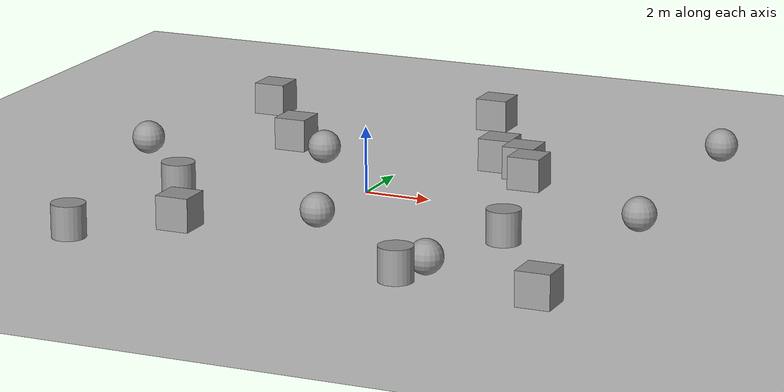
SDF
<sdf version="1.6">
 <world name="default">
  <light name="sun" type="directional">
   <pose>0 0 10 0 -0 0</pose>
   <diffuse>0.8 0.8 0.8 1</diffuse>
   <specular>0.2 0.2 0.2 1</specular>
   <attenuation>
    <range>1000</range>
    <constant>0.9</constant>
    <linear>0.01</linear>
    <quadratic>0.001</quadratic>
   </attenuation>
   <direction>-0.5 0.1 -0.9</direction>
  </light>
  <model name="ground_plane">
   <static>1</static>
   <link name="link">
    <collision name="collision">
     <geometry><plane><normal>0 0 1</normal><size>100 100</size></plane></geometry>
     <surface>
      <contact><collide_bitmask>65535</collide_bitmask></contact>
      <friction><ode><mu>100</mu><mu2>50</mu2></ode></friction>
     </surface>
    </collision>
    <visual name="visual">
     <cast_shadows>0</cast_shadows>
     <geometry><plane><normal>0 0 1</normal><size>100 100</size></plane></geometry>
     <material>
      <script><uri>file://media/materials/scripts/gazebo.material</uri><name>Gazebo/Grey</name></script>
     </material>
    </visual>
   </link>
  </model>
  <gravity>0 0 -9.8</gravity>
  <magnetic_field>6e-06 2.3e-05 -4.2e-05</magnetic_field>
  <atmosphere type="adiabatic"/>
  <physics name="default_physics" default="0" type="ode">
   <max_step_size>0.001</max_step_size>
   <real_time_factor>1</real_time_factor>
   <real_time_update_rate>1000</real_time_update_rate>
  </physics>
  <scene><ambient>0.4 0.4 0.4 1</ambient><background>0.7 0.7 0.7 1</background><shadows>1</shadows></scene>
  <audio><device>default</device></audio>
  <spherical_coordinates>
   <surface_model>EARTH_WGS84</surface_model>
   <latitude_deg>0</latitude_deg>
   <longitude_deg>0</longitude_deg>
   <elevation>0</elevation>
   <heading_deg>0</heading_deg>
  </spherical_coordinates>
  <model name="unit_box">
   <pose>-3.40491 -5.3164 0.5 -0 -0 -0</pose>
   <link name="link">
    <inertial>
     <mass>1</mass>
     <inertia>
      <ixx>0.166667</ixx>
      <ixy>0</ixy>
      <ixz>0</ixz>
      <iyy>0.166667</iyy>
      <iyz>0</iyz>
      <izz>0.166667</izz>
     </inertia>
    </inertial>
    <collision name="collision"><geometry><box><size>1 1 1</size></box></geometry></collision>
    <visual name="visual">
     <geometry><box><size>1 1 1</size></box></geometry>
     <material>
      <script><name>Gazebo/Grey</name><uri>file://media/materials/scripts/gazebo.material</uri></script>
     </material>
    </visual>
   </link>
  </model>
  <model name="unit_box_0">
   <pose>-4.10122 3.8136 0.5 0 -0 0</pose>
   <link name="link">
    <inertial>
     <mass>1</mass>
     <inertia>
      <ixx>0.166667</ixx>
      <ixy>0</ixy>
      <ixz>0</ixz>
      <iyy>0.166667</iyy>
      <iyz>0</iyz>
      <izz>0.166667</izz>
     </inertia>
    </inertial>
    <collision name="collision"><geometry><box><size>1 1 1</size></box></geometry></collision>
    <visual name="visual">
     <geometry><box><size>1 1 1</size></box></geometry>
     <material>
      <script><name>Gazebo/Grey</name><uri>file://media/materials/scripts/gazebo.material</uri></script>
     </material>
    </visual>
   </link>
  </model>
  <model name="unit_sphere">
   <pose>0.161192 -3.7282 0.5 0 -0 0</pose>
   <link name="link">
    <inertial>
     <mass>1</mass>
     <inertia><ixx>0.1</ixx><ixy>0</ixy><ixz>0</ixz><iyy>0.1</iyy><iyz>0</iyz><izz>0.1</izz></inertia>
    </inertial>
    <collision name="collision"><geometry><sphere><radius>0.5</radius></sphere></geometry></collision>
    <visual name="visual">
     <geometry><sphere><radius>0.5</radius></sphere></geometry>
     <material>
      <script><name>Gazebo/Grey</name><uri>file://media/materials/scripts/gazebo.material</uri></script>
     </material>
    </visual>
   </link>
  </model>
  <model name="unit_sphere_0">
   <pose>-2.55111 2.54212 0.5 0 -0 0</pose>
   <link name="link">
    <inertial>
     <mass>1</mass>
     <inertia><ixx>0.1</ixx><ixy>0</ixy><ixz>0</ixz><iyy>0.1</iyy><iyz>0</iyz><izz>0.1</izz></inertia>
    </inertial>
    <collision name="collision"><geometry><sphere><radius>0.5</radius></sphere></geometry></collision>
    <visual name="visual">
     <geometry><sphere><radius>0.5</radius></sphere></geometry>
     <material>
      <script><name>Gazebo/Grey</name><uri>file://media/materials/scripts/gazebo.material</uri></script>
     </material>
    </visual>
   </link>
  </model>
  <model name="unit_cylinder">
   <pose>4.24787 -7.48664 0.499991 -0 -0 -1.2e-05</pose>
   <link name="link">
    <inertial>
     <mass>1</mass>
     <inertia><ixx>0.145833</ixx><ixy>0</ixy><ixz>0</ixz><iyy>0.145833</iyy><iyz>0</iyz><izz>0.125</izz></inertia>
    </inertial>
    <collision name="collision">
     <geometry><cylinder><radius>0.5</radius><length>1</length></cylinder></geometry>
    </collision>
    <visual name="visual">
     <geometry><cylinder><radius>0.5</radius><length>1</length></cylinder></geometry>
     <material>
      <script><name>Gazebo/Grey</name><uri>file://media/materials/scripts/gazebo.material</uri></script>
     </material>
    </visual>
   </link>
  </model>
  <model name="unit_cylinder_1">
   <pose>5.59647 -3.09919 0.499993 -3e-06 2e-06 0</pose>
   <link name="link">
    <inertial>
     <mass>1</mass>
     <inertia><ixx>0.145833</ixx><ixy>0</ixy><ixz>0</ixz><iyy>0.145833</iyy><iyz>0</iyz><izz>0.125</izz></inertia>
    </inertial>
    <collision name="collision">
     <geometry><cylinder><radius>0.5</radius><length>1</length></cylinder></geometry>
    </collision>
    <visual name="visual">
     <geometry><cylinder><radius>0.5</radius><length>1</length></cylinder></geometry>
     <material>
      <script><name>Gazebo/Grey</name><uri>file://media/materials/scripts/gazebo.material</uri></script>
     </material>
    </visual>
   </link>
  </model>
  <model name="unit_box_1">
   <pose>2.59735 4.02786 0.5 0 -0 0.00782</pose>
   <link name="link">
    <inertial>
     <mass>1</mass>
     <inertia>
      <ixx>0.166667</ixx>
      <ixy>0</ixy>
      <ixz>0</ixz>
      <iyy>0.166667</iyy>
      <iyz>0</iyz>
      <izz>0.166667</izz>
     </inertia>
    </inertial>
    <collision name="collision"><geometry><box><size>1 1 1</size></box></geometry></collision>
    <visual name="visual">
     <geometry><box><size>1 1 1</size></box></geometry>
     <material>
      <script><name>Gazebo/Grey</name><uri>file://media/materials/scripts/gazebo.material</uri></script>
     </material>
    </visual>
   </link>
  </model>
  <model name="unit_cylinder_2">
   <pose>-4.98063 -2.3723 0.499998 3e-06 -3e-06 0</pose>
   <link name="link">
    <inertial>
     <mass>1</mass>
     <inertia><ixx>0.145833</ixx><ixy>0</ixy><ixz>0</ixz><iyy>0.145833</iyy><iyz>0</iyz><izz>0.125</izz></inertia>
    </inertial>
    <collision name="collision">
     <geometry><cylinder><radius>0.5</radius><length>1</length></cylinder></geometry>
    </collision>
    <visual name="visual">
     <geometry><cylinder><radius>0.5</radius><length>1</length></cylinder></geometry>
     <material>
      <script><name>Gazebo/Grey</name><uri>file://media/materials/scripts/gazebo.material</uri></script>
     </material>
    </visual>
   </link>
  </model>
  <model name="unit_box_2">
   <pose>4.16232 2.47666 0.5 0 -0 0.008036</pose>
   <link name="link">
    <inertial>
     <mass>1</mass>
     <inertia>
      <ixx>0.166667</ixx>
      <ixy>0</ixy>
      <ixz>0</ixz>
      <iyy>0.166667</iyy>
      <iyz>0</iyz>
      <izz>0.166667</izz>
     </inertia>
    </inertial>
    <collision name="collision"><geometry><box><size>1 1 1</size></box></geometry></collision>
    <visual name="visual">
     <geometry><box><size>1 1 1</size></box></geometry>
     <material>
      <script><name>Gazebo/Grey</name><uri>file://media/materials/scripts/gazebo.material</uri></script>
     </material>
    </visual>
   </link>
  </model>
  <model name="unit_sphere_2">
   <pose>4.75551 -6.6154 0.5 -0.014204 0.009421 0.00337</pose>
   <link name="link">
    <inertial>
     <mass>1</mass>
     <inertia><ixx>0.1</ixx><ixy>0</ixy><ixz>0</ixz><iyy>0.1</iyy><iyz>0</iyz><izz>0.1</izz></inertia>
    </inertial>
    <collision name="collision"><geometry><sphere><radius>0.5</radius></sphere></geometry></collision>
    <visual name="visual">
     <geometry><sphere><radius>0.5</radius></sphere></geometry>
     <material>
      <script><name>Gazebo/Grey</name><uri>file://media/materials/scripts/gazebo.material</uri></script>
     </material>
    </visual>
   </link>
  </model>
  <model name="unit_box_3">
   <pose>8.48757 -7.80085 0.5 -0 -0 -0</pose>
   <link name="link">
    <inertial>
     <mass>1</mass>
     <inertia>
      <ixx>0.166667</ixx>
      <ixy>0</ixy>
      <ixz>0</ixz>
      <iyy>0.166667</iyy>
      <iyz>0</iyz>
      <izz>0.166667</izz>
     </inertia>
    </inertial>
    <collision name="collision"><geometry><box><size>1 1 1</size></box></geometry></collision>
    <visual name="visual">
     <geometry><box><size>1 1 1</size></box></geometry>
     <material>
      <script><name>Gazebo/Grey</name><uri>file://media/materials/scripts/gazebo.material</uri></script>
     </material>
    </visual>
   </link>
  </model>
  <model name="unit_box_4">
   <pose>-6.61085 7.51602 0.5 0 -0 0</pose>
   <link name="link">
    <inertial>
     <mass>1</mass>
     <inertia>
      <ixx>0.166667</ixx>
      <ixy>0</ixy>
      <ixz>0</ixz>
      <iyy>0.166667</iyy>
      <iyz>0</iyz>
      <izz>0.166667</izz>
     </inertia>
    </inertial>
    <collision name="collision"><geometry><box><size>1 1 1</size></box></geometry></collision>
    <visual name="visual">
     <geometry><box><size>1 1 1</size></box></geometry>
     <material>
      <script><name>Gazebo/Grey</name><uri>file://media/materials/scripts/gazebo.material</uri></script>
     </material>
    </visual>
   </link>
  </model>
  <model name="unit_cylinder_3">
   <pose>-5.81048 -7.4181 0.499998 3e-06 -4e-06 0</pose>
   <link name="link">
    <inertial>
     <mass>1</mass>
     <inertia><ixx>0.145833</ixx><ixy>0</ixy><ixz>0</ixz><iyy>0.145833</iyy><iyz>0</iyz><izz>0.125</izz></inertia>
    </inertial>
    <collision name="collision">
     <geometry><cylinder><radius>0.5</radius><length>1</length></cylinder></geometry>
    </collision>
    <visual name="visual">
     <geometry><cylinder><radius>0.5</radius><length>1</length></cylinder></geometry>
     <material>
      <script><name>Gazebo/Grey</name><uri>file://media/materials/scripts/gazebo.material</uri></script>
     </material>
    </visual>
   </link>
  </model>
  <model name="unit_sphere_3">
   <pose>8.48345 7.53587 0.5 0 -0 0</pose>
   <link name="link">
    <inertial>
     <mass>1</mass>
     <inertia><ixx>0.1</ixx><ixy>0</ixy><ixz>0</ixz><iyy>0.1</iyy><iyz>0</iyz><izz>0.1</izz></inertia>
    </inertial>
    <collision name="collision"><geometry><sphere><radius>0.5</radius></sphere></geometry></collision>
    <visual name="visual">
     <geometry><sphere><radius>0.5</radius></sphere></geometry>
     <material>
      <script><name>Gazebo/Grey</name><uri>file://media/materials/scripts/gazebo.material</uri></script>
     </material>
    </visual>
   </link>
  </model>
  <model name="unit_box_5">
   <pose>0.717755 8.4594 0.5 -0 -0 -0</pose>
   <link name="link">
    <inertial>
     <mass>1</mass>
     <inertia>
      <ixx>0.166667</ixx>
      <ixy>0</ixy>
      <ixz>0</ixz>
      <iyy>0.166667</iyy>
      <iyz>0</iyz>
      <izz>0.166667</izz>
     </inertia>
    </inertial>
    <collision name="collision"><geometry><box><size>1 1 1</size></box></geometry></collision>
    <visual name="visual">
     <geometry><box><size>1 1 1</size></box></geometry>
     <material>
      <script><name>Gazebo/Grey</name><uri>file://media/materials/scripts/gazebo.material</uri></script>
     </material>
    </visual>
   </link>
  </model>
  <model name="unit_sphere_4">
   <pose>8.67849 -0.485052 0.5 0 -0 0</pose>
   <link name="link">
    <inertial>
     <mass>1</mass>
     <inertia><ixx>0.1</ixx><ixy>0</ixy><ixz>0</ixz><iyy>0.1</iyy><iyz>0</iyz><izz>0.1</izz></inertia>
    </inertial>
    <collision name="collision"><geometry><sphere><radius>0.5</radius></sphere></geometry></collision>
    <visual name="visual">
     <geometry><sphere><radius>0.5</radius></sphere></geometry>
     <material>
      <script><name>Gazebo/Grey</name><uri>file://media/materials/scripts/gazebo.material</uri></script>
     </material>
    </visual>
   </link>
  </model>
  <model name="unit_box_6">
   <pose>3.60178 3.47234 0.5 0 -0 0.00791</pose>
   <link name="link">
    <inertial>
     <mass>1</mass>
     <inertia>
      <ixx>0.166667</ixx>
      <ixy>0</ixy>
      <ixz>0</ixz>
      <iyy>0.166667</iyy>
      <iyz>0</iyz>
      <izz>0.166667</izz>
     </inertia>
    </inertial>
    <collision name="collision"><geometry><box><size>1 1 1</size></box></geometry></collision>
    <visual name="visual">
     <geometry><box><size>1 1 1</size></box></geometry>
     <material>
      <script><name>Gazebo/Grey</name><uri>file://media/materials/scripts/gazebo.material</uri></script>
     </material>
    </visual>
   </link>
  </model>
  <model name="unit_sphere_1">
   <pose>-7.97349 1.37373 0.5 0 -0 0</pose>
   <link name="link">
    <inertial>
     <mass>1</mass>
     <inertia><ixx>0.1</ixx><ixy>0</ixy><ixz>0</ixz><iyy>0.1</iyy><iyz>0</iyz><izz>0.1</izz></inertia>
    </inertial>
    <collision name="collision"><geometry><sphere><radius>0.5</radius></sphere></geometry></collision>
    <visual name="visual">
     <geometry><sphere><radius>0.5</radius></sphere></geometry>
     <material>
      <script><name>Gazebo/Grey</name><uri>file://media/materials/scripts/gazebo.material</uri></script>
     </material>
    </visual>
   </link>
  </model>
 </world>
</sdf>
